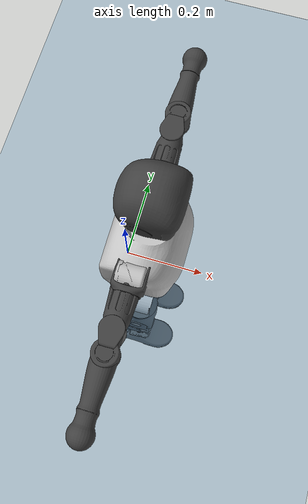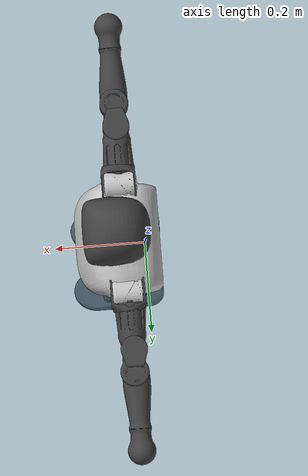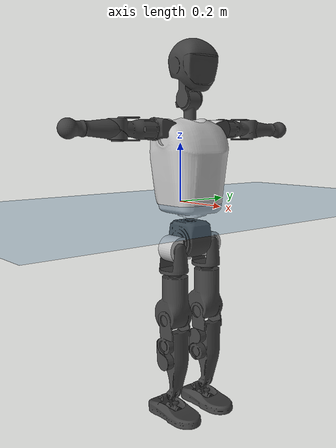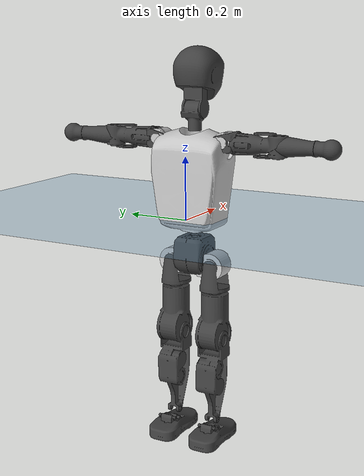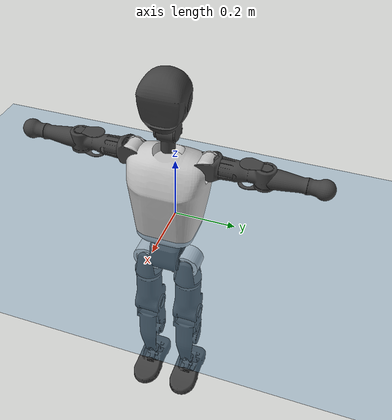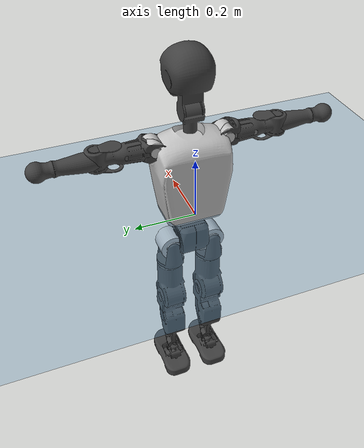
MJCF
<mujoco model="T1">
  <compiler angle="radian" assetdir="assets" balanceinertia="true" inertiafromgeom="false"/>

  <option timestep="0.005" density="1.2" viscosity="2e-05"/>

  <size nkey="1"/>

  <visual>
    <quality shadowsize="8192"/>
    <map shadowclip="0.5"/>
  </visual>

  <default>
    <default class="/">
      <joint armature="0.01" damping="0.01" frictionloss="0.1"/>
      <geom contype="0" conaffinity="0" group="1" solref="-1000 -80"/>
      <site size="0.01 0.005 0.005" group="5"/>
      <general forcelimited="true" biastype="affine" gainprm="25" biasprm="0 -25 -0.6"/>
      <default class="t1">
        <geom rgba="0.25 0.25 0.25 1"/>
        <default class="visual">
          <geom type="mesh" group="2"/>
        </default>
        <default class="collision">
          <geom group="3"/>
        </default>
        <default class="foot">
          <geom size="0.1115 0.05 0.015" type="box" condim="6" group="4" priority="1" solimp="0.015 1 0.015"/>
        </default>
        <default class="reward_collision_sphere">
          <geom group="5" rgba="1 0 0 1"/>
        </default>
      </default>
    </default>
  </default>

  <asset>
    <texture type="skybox" colorspace="auto" name="//unnamed_texture_0" builtin="gradient" rgb1="0.95 0.95 0.95" rgb2="0.95 0.95 0.95" width="100" height="600"/>
    <texture type="2d" colorspace="auto" name="texplane" builtin="checker" rgb1="0.345 0.575 0.748" rgb2="0.345 0.575 0.748" markrgb="1 1 1" width="512" height="512"/>
    <material name="MatPlane" class="/" texture="texplane" texuniform="true" texrepeat="2 2" specular="0.9"/>
    <mesh name="Trunk" class="/" file="Trunk.stl"/>
    <mesh name="H1" class="/" file="H1.stl"/>
    <mesh name="H2" class="/" file="H2.stl"/>
    <mesh name="AL1" class="/" file="AL1.stl"/>
    <mesh name="AL2" class="/" file="AL2.stl"/>
    <mesh name="AL3" class="/" file="AL3.stl"/>
    <mesh name="left_hand_link" class="/" file="left_hand_link.stl"/>
    <mesh name="AR1" class="/" file="AR1.stl"/>
    <mesh name="AR2" class="/" file="AR2.stl"/>
    <mesh name="AR3" class="/" file="AR3.stl"/>
    <mesh name="right_hand_link" class="/" file="right_hand_link.stl"/>
    <mesh name="Waist" class="/" file="Waist.stl"/>
    <mesh name="Hip_Pitch_Left" class="/" file="Hip_Pitch_Left.stl"/>
    <mesh name="Hip_Roll_Left" class="/" file="Hip_Roll_Left.stl"/>
    <mesh name="Hip_Yaw_Left" class="/" file="Hip_Yaw_Left.stl"/>
    <mesh name="Shank_Left" class="/" file="Shank_Left.stl"/>
    <mesh name="Ankle_Cross_Left" class="/" file="Ankle_Cross_Left.stl"/>
    <mesh name="left_foot_link" class="/" file="left_foot_link.stl"/>
    <mesh name="Hip_Pitch_Right" class="/" file="Hip_Pitch_Right.stl"/>
    <mesh name="Hip_Roll_Right" class="/" file="Hip_Roll_Right.stl"/>
    <mesh name="Hip_Yaw_Right" class="/" file="Hip_Yaw_Right.stl"/>
    <mesh name="Shank_Right" class="/" file="Shank_Right.stl"/>
    <mesh name="Ankle_Cross_Right" class="/" file="Ankle_Cross_Right.stl"/>
    <mesh name="right_foot_link" class="/" file="right_foot_link.stl"/>
  </asset>

  <worldbody>
    <geom name="floor" class="/" size="100 100 0.125" type="plane" group="0" material="MatPlane"/>
    <light name="toplight_shadow" class="/" pos="0 0 5" dir="0.0990148 0.0990148 -0.990148" type="directional" ambient="0.04 0.04 0.04" diffuse="0.55 0.55 0.55" specular="0.12 0.12 0.12"/>
    <light name="toplight_fill" class="/" pos="0 0 5" dir="0.0990148 0.0990148 -0.990148" type="directional" castshadow="false" ambient="0.04 0.04 0.04" diffuse="0.3 0.3 0.3" specular="0.08 0.08 0.08"/>
    <body name="trunk" childclass="t1" pos="-8.45758e-06 -0.000415242 0.00280777" quat="1 4.34385e-05 -7.16146e-05 4.37891e-05">
      <inertial pos="0.0488764 -0.00376203 0.1175" quat="0.999844 0.00997189 -0.0117333 0.00867746" mass="7.86772" diaginertia="0.0465839 0.0091364 0.0993616"/>
      <joint name="//unnamed_joint_0" type="free" armature="0" damping="0" frictionloss="0"/>
      <geom name="//unnamed_geom_1" class="visual" rgba="0.76 0.76 0.76 1" mesh="Trunk"/>
      <geom name="//unnamed_geom_2" class="collision" size="0.0664869 0.0886492 0.132974" pos="0.0523372 0 0.135265" type="box"/>
      <geom name="//unnamed_geom_3" class="reward_collision_sphere" size="0.101947" pos="0.0523372 0 0.112721"/>
      <geom name="//unnamed_geom_4" class="reward_collision_sphere" size="0.0132974" pos="0.0523372 0.0560982 0"/>
      <geom name="//unnamed_geom_5" class="reward_collision_sphere" size="0.0132974" pos="0.0523372 -0.0560982 0"/>
      <geom name="//unnamed_geom_6" class="reward_collision_sphere" size="0.0132974" pos="0.0523372 0.0706177 0.202898"/>
      <geom name="//unnamed_geom_7" class="reward_collision_sphere" size="0.0132974" pos="0.0523372 -0.0706177 0.202898"/>
      <site name="imu" pos="-0.000277023 0.0124664 -0.00884889" size="0.00886492"/>
      <camera name="track" pos="0 -1.31996 0" quat="0.707107 0.707107 0 0" mode="trackcom"/>
      <camera name="ego_camera" pos="0.106419 0 0.473428" quat="-0.5 -0.5 0.5 0.5"/>
      <body name="H1" pos="0.0535703 -0.00318665 0.272664" quat="0.999999 -0.000267818 0.000912701 0.00084427">
        <inertial pos="-0.00136133 -0.000500677 0.0664783" quat="0.764112 -0.0179014 0.00428723 0.644821" mass="0.298189" diaginertia="0.000117334 2.85521e-05 0.000268324"/>
        <joint name="AAHead_yaw" pos="0 0 0" axis="0.00691736 -0.00122015 0.999975" range="-1.53377 1.60547" armature="0.00915652" damping="0" frictionloss="0.0763205"/>
        <geom name="//unnamed_geom_8" class="visual" mesh="H1"/>
        <body name="H2" pos="-0.000478795 -0.00101973 0.068615" quat="1 0.000634331 -1.93351e-05 8.203e-05">
          <inertial pos="0.00406382 0.0030176 0.113929" quat="0.989655 0.0964806 -0.0660843 -0.0831139" mass="0.439542" diaginertia="0.00102537 0.000236744 0.00314542"/>
          <joint name="Head_pitch" pos="0 0 0" axis="0.0123384 -0.999906 0.00601362" range="-1.223 0.355418" armature="0.00863011" damping="0.00597543" frictionloss="0.087856"/>
          <geom name="//unnamed_geom_9" class="visual" mesh="H2"/>
          <geom name="//unnamed_geom_10" class="collision" size="0.0709193" pos="0.00872287 0 0.123993"/>
          <geom name="//unnamed_geom_11" class="reward_collision_sphere" size="0.0797842" pos="0.0174457 0 0.112721"/>
        </body>
      </body>
      <body name="AL1" pos="0.0494902 0.0697933 0.244454" quat="1 -8.8501e-05 0.000759572 0.000293468">
        <inertial pos="0.0002207 0.0269164 -0.000208783" quat="0.506418 0.503462 -0.502163 0.487749" mass="0.351772" diaginertia="0.000647445 0.000156791 0.000518478"/>
        <joint name="Left_Shoulder_Pitch" pos="0 0 0" axis="0.0141412 0.999897 -0.00249044" range="-3.267 1.22695" armature="0.00746948" damping="0" frictionloss="0.0791956"/>
        <geom name="//unnamed_geom_12" class="visual" rgba="0.76 0.76 0.76 1" mesh="AL1"/>
        <body name="AL2" pos="-0.000439894 0.0304829 -0.000150706" quat="0.999999 -8.77488e-05 1.46814e-05 -0.00109147">
          <inertial pos="0.0049642 0.0275378 -0.00032239" quat="0.479201 0.50835 -0.493449 0.518126" mass="0.108644" diaginertia="0.000196196 4.25017e-05 0.000309625"/>
          <joint name="Left_Shoulder_Roll" pos="0 0 0" axis="-0.999982 0.00594309 0.000821675" range="-1.5678 1.74225" armature="0.0100971" damping="0.021289" frictionloss="0.0930068"/>
          <geom name="//unnamed_geom_13" class="visual" mesh="AL2"/>
          <body name="AL3" pos="-0.00202181 0.0380623 -3.40492e-06" quat="0.999999 0.000783597 0.000870867 -0.00026514">
            <inertial pos="0.00190106 0.0558889 0.00182347" quat="0.70748 0.7067 0.00482584 0.00483361" mass="0.724159" diaginertia="0.00655914 0.00165611 0.00113811"/>
            <joint name="Left_Elbow_Pitch" pos="0 0 0" axis="-0.00147126 -0.999993 0.00353799" stiffness="0.00858479" range="-2.25475 2.30295" armature="0.0100191" damping="0.010203" frictionloss="0.0961228"/>
            <geom name="//unnamed_geom_14" class="visual" mesh="AL3"/>
            <geom name="//unnamed_geom_15" class="collision" size="0.0265947 0.0664869" pos="0 0.0329989 0" quat="0.707105 0.707108 0 0" type="cylinder"/>
            <geom name="//unnamed_geom_16" class="reward_collision_sphere" size="0.0319137"/>
            <body name="left_hand_link" pos="-0.00214006 0.0988227 -0.00178185" quat="1 -0.000431952 -0.000140194 0.000762583">
              <inertial pos="0.000832058 0.0751729 -0.000400696" quat="0.707406 0.706807 -0.000444661 -0.000292258" mass="0.222132" diaginertia="0.00424161 0.00105835 0.00038047"/>
              <joint name="Left_Elbow_Yaw" pos="0 0 0" axis="0.0113487 -0.00807486 0.999903" stiffness="0.00570834" range="-2.48778 0.034648" armature="0.00776019" damping="0.000752963" frictionloss="0.0994405"/>
              <geom name="//unnamed_geom_17" class="visual" mesh="left_hand_link"/>
              <geom name="//unnamed_geom_18" class="collision" size="0.0265947 0.077568" pos="0 0.0857972 0" quat="0.707105 0.707108 0 0" type="cylinder"/>
              <geom name="//unnamed_geom_19" class="reward_collision_sphere" size="0.0443246"/>
              <geom name="//unnamed_geom_20" class="reward_collision_sphere" size="0.0310272" pos="0 0.0725976 0"/>
              <geom name="//unnamed_geom_21" class="reward_collision_sphere" size="0.0310272" pos="0 0.141895 0"/>
            </body>
          </body>
        </body>
      </body>
      <body name="AR1" pos="0.0495151 -0.0666553 0.244166" quat="1 5.33628e-05 0.000467708 -9.1894e-05">
        <inertial pos="-0.000365216 -0.0323852 -0.00058588" quat="0.504398 0.497984 -0.50178 0.495794" mass="0.38068" diaginertia="0.000691918 0.000156982 0.000534655"/>
        <joint name="Right_Shoulder_Pitch" pos="0 0 0" axis="-0.00780639 -0.999967 0.00215536" range="-1.22826 3.35287" armature="0.00900266" damping="0.0172548" frictionloss="0.0799047"/>
        <geom name="//unnamed_geom_22" class="visual" rgba="0.76 0.76 0.76 1" mesh="AR1"/>
        <body name="AR2" pos="0.00127096 -0.0328311 8.28056e-05" quat="1 7.39868e-05 0.000124321 -0.000123672">
          <inertial pos="0.00620861 -0.0246406 -0.000716735" quat="0.512497 0.483458 -0.515289 0.487947" mass="0.117469" diaginertia="0.000206556 4.30571e-05 0.00033364"/>
          <joint name="Right_Shoulder_Roll" pos="0 0 0" axis="-0.999961 0.00640496 0.00602557" range="-1.72934 1.62792" armature="0.00913149" damping="0" frictionloss="0.100637"/>
          <geom name="//unnamed_geom_23" class="visual" mesh="AR2"/>
          <body name="AR3" pos="-0.00271275 -0.0403542 -0.00328171" quat="0.999999 -0.000615264 -0.000336378 -0.000891259">
            <inertial pos="-0.000903681 -0.0536363 -0.000958206" quat="0.701665 0.712486 -0.00527914 0.00116767" mass="0.744559" diaginertia="0.00657195 0.00162003 0.00113687"/>
            <joint name="Right_Elbow_Pitch" pos="0 0 0" axis="-0.00189424 0.999995 0.00234989" range="-2.32723 2.21715" armature="0.00915516" damping="0.00804557" frictionloss="0.0870297"/>
            <geom name="//unnamed_geom_24" class="visual" mesh="AR3"/>
            <geom name="//unnamed_geom_25" class="collision" size="0.0265947 0.0664869" pos="0 -0.0329989 0" quat="0.707105 0.707108 0 0" type="cylinder"/>
            <geom name="//unnamed_geom_26" class="reward_collision_sphere" size="0.0319137"/>
            <body name="right_hand_link" pos="-0.000511096 -0.0970634 0.000749274" quat="1 2.97291e-05 -0.000114472 7.21767e-05">
              <inertial pos="-5.42612e-05 -0.0722689 -0.000857035" quat="0.699883 0.714177 0.00272134 0.0103828" mass="0.215459" diaginertia="0.00393047 0.000992262 0.00037801"/>
              <joint name="Right_Elbow_Yaw" pos="0 0 0" axis="-0.00283557 0.0160849 0.999867" range="0.030201 2.48843" armature="0.0091087" damping="0.00739136" frictionloss="0.0932882"/>
              <geom name="//unnamed_geom_27" class="visual" mesh="right_hand_link"/>
              <geom name="//unnamed_geom_28" class="collision" size="0.0265947 0.077568" pos="0 -0.0857972 0" quat="0.707105 0.707108 0 0" type="cylinder"/>
              <geom name="//unnamed_geom_29" class="reward_collision_sphere" size="0.0443246"/>
              <geom name="//unnamed_geom_30" class="reward_collision_sphere" size="0.0310272" pos="0 -0.0725976 0"/>
              <geom name="//unnamed_geom_31" class="reward_collision_sphere" size="0.0310272" pos="0 -0.141895 0"/>
            </body>
          </body>
        </body>
      </body>
      <body name="Waist" pos="0.0537791 -0.00199564 -0.129971" quat="0.999999 -0.000272155 0.00127379 0.0011105">
        <inertial pos="0.000639658 -0.00371158 0.00761017" quat="0.983518 0.000527704 -0.180788 0.00281237" mass="1.83252" diaginertia="0.00270131 0.000652557 0.00833918"/>
        <joint name="Waist" pos="0 0 0" axis="-0.00383994 0.0147985 0.999883" stiffness="0.00811051" range="-1.56886 1.57009" armature="0.00927363" damping="0" frictionloss="0.0795753"/>
        <geom name="//unnamed_geom_32" class="visual" mesh="Waist"/>
        <body name="Hip_Pitch_Left" pos="0.00366335 0.0683941 0.00240812" quat="0.999999 -0.000488544 -0.00144395 0.000199706">
          <inertial pos="3.04337e-05 -0.0060004 -0.0205807" quat="0.974522 0.222785 0.0248837 0.00743203" mass="0.708987" diaginertia="0.000887408 0.000181321 0.00215438"/>
          <joint name="Left_Hip_Pitch" pos="0 0 0" axis="-0.00698704 0.999974 -0.00202142" range="-1.78362 1.59065" armature="0.00851934" damping="0.00589898" frictionloss="0.0960138"/>
          <geom name="//unnamed_geom_33" class="visual" rgba="0.76 0.76 0.76 1" mesh="Hip_Pitch_Left"/>
          <body name="Hip_Roll_Left" pos="0.00216153 0.00248367 -0.0201143" quat="1 -0.000168263 0.000527782 0.000224424">
            <inertial pos="-0.00120511 -0.00304537 -0.0601671" quat="0.708257 -0.00589135 0.00146529 0.705929" mass="0.264056" diaginertia="0.000847331 0.000187312 0.000919905"/>
            <joint name="Left_Hip_Roll" pos="0 0 0" axis="-0.999982 0.00116372 -0.00590628" stiffness="0.00183073" range="-1.6245 0.246167" armature="0.00983006" damping="0.00967031" frictionloss="0.0932166"/>
            <geom name="//unnamed_geom_34" class="visual" mesh="Hip_Roll_Left"/>
            <geom name="//unnamed_geom_35" class="reward_collision_sphere" size="0.048757"/>
            <body name="Hip_Yaw_Left" pos="0.00084018 0.00228058 -0.0902839" quat="0.999999 0.000209202 0.000455919 0.00107491">
              <inertial pos="-0.00640317 -0.000207802 -0.103142" quat="0.697931 -0.035787 -0.0335888 0.714481" mass="1.5214" diaginertia="0.0125031 0.00315181 0.00486949"/>
              <joint name="Left_Hip_Yaw" pos="0 0 0" axis="0.00491415 0.00812699 -0.999955" stiffness="0.00168472" range="-1.00394 0.966209" armature="0.00847014" damping="0.00827333" frictionloss="0.0986273"/>
              <geom name="//unnamed_geom_36" class="visual" mesh="Hip_Yaw_Left"/>
              <geom name="//unnamed_geom_37" class="collision" size="0.0443246 0.0709193" type="cylinder"/>
              <body name="Shank_Left" pos="-0.00865278 0.00152067 -0.153478" quat="1 0.000109146 -0.000219101 0.000146428">
                <inertial pos="-0.00257633 -0.00247992 -0.141056" quat="0.99749 0.00102232 -0.0241642 0.0665515" mass="1.17321" diaginertia="0.017323 0.00417773 0.00337522"/>
                <joint name="Left_Knee_Pitch" pos="0 0 0" axis="-0.0024146 0.999971 -0.00729131" stiffness="0.00758829" range="0.0494332 2.3814" armature="0.0088528" damping="0.0110313" frictionloss="0.0841468"/>
                <geom name="//unnamed_geom_38" class="visual" mesh="Shank_Left"/>
                <geom name="//unnamed_geom_39" class="collision" size="0.0443246 0.0664869" pos="0 0 -0.135265" type="cylinder"/>
                <geom name="//unnamed_geom_40" class="reward_collision_sphere" size="0.0576219"/>
                <body name="Ankle_Cross_Left" pos="-0.000435038 0.000875896 -0.314212" quat="0.999999 3.4803e-05 -0.000966556 -0.00104129">
                  <inertial pos="-0.00030283 0.000738991 -0.0115157" quat="0.442944 0.550922 0.551138 0.44332" mass="0.0515103" diaginertia="1.48099e-05 3.08569e-06 2.03408e-05"/>
                  <joint name="Left_Ankle_Pitch" pos="0 0 0" axis="0.0147529 0.999888 -0.00269326" stiffness="0.0085233" range="-0.891544 0.372777" armature="0.00863946" damping="0.0209861" frictionloss="0.0760567"/>
                  <geom name="//unnamed_geom_41" class="visual" mesh="Ankle_Cross_Left"/>
                  <body name="left_foot_link" pos="-0.00123268 0.00447806 -0.0152275" quat="1 -0.000137436 -8.1342e-05 0.000145512">
                    <inertial pos="0.00107743 0.00274739 -0.0103136" quat="0.00117795 0.630256 0.00656387 0.776359" mass="0.468093" diaginertia="0.001395 0.000310843 0.00412673"/>
                    <joint name="Left_Ankle_Roll" pos="0 0 0" axis="-0.999874 -0.0158896 -0.000283124" stiffness="0.000967071" range="-0.467509 0.481462" armature="0.00946051" damping="0.00958953" frictionloss="0.0945632"/>
                    <geom name="//unnamed_geom_42" class="visual" mesh="left_foot_link"/>
                    <geom name="left_foot" class="foot" size="0.104343 0.0522603 0.0131861" pos="0.00872287 0 -0.0169081"/>
                    <geom name="//unnamed_geom_44" class="reward_collision_sphere" size="0.0460976" pos="0.00872287 0 -0.0169081"/>
                    <geom name="//unnamed_geom_45" class="reward_collision_sphere" size="0.0265947" pos="0.0828673 -0.0151795 -0.0169081"/>
                    <geom name="//unnamed_geom_46" class="reward_collision_sphere" size="0.0265947" pos="-0.0610601 -0.0151795 -0.0169081"/>
                    <site name="left_foot" class="foot" pos="0.00872287 0 -0.0169081" size="0.00886492"/>
                  </body>
                </body>
              </body>
            </body>
          </body>
        </body>
        <body name="Hip_Pitch_Right" pos="0.00261639 -0.0698044 -0.00240569" quat="1 -9.50447e-05 -0.000174069 -2.26642e-05">
          <inertial pos="-0.00199988 0.00453185 -0.0200514" quat="0.971465 -0.236117 0.022301 0.00253658" mass="0.675484" diaginertia="0.000881409 0.000177569 0.00221397"/>
          <joint name="Right_Hip_Pitch" pos="0 0 0" axis="0.000268726 -0.99997 0.00778887" range="-1.57133 1.74364" armature="0.00928013" damping="0.00322947" frictionloss="0.0783832"/>
          <geom name="//unnamed_geom_47" class="visual" rgba="0.76 0.76 0.76 1" mesh="Hip_Pitch_Right"/>
          <body name="Hip_Roll_Right" pos="-0.000497932 -0.00246502 -0.0228708" quat="1 7.82618e-05 -0.00027063 -0.000236027">
            <inertial pos="0.0010916 -0.00237306 -0.0633225" quat="0.703981 -0.00780611 -0.0168781 0.709976" mass="0.262645" diaginertia="0.000857498 0.000186222 0.000925402"/>
            <joint name="Right_Hip_Roll" pos="0 0 0" axis="-0.999995 0.00209451 -0.00236865" range="-0.178928 1.57237" armature="0.00870408" damping="0.0111156" frictionloss="0.0762636"/>
            <geom name="//unnamed_geom_48" class="visual" mesh="Hip_Roll_Right"/>
            <geom name="//unnamed_geom_49" class="reward_collision_sphere" size="0.048757"/>
            <body name="Hip_Yaw_Right" pos="0.00327791 0.00127977 -0.0905081" quat="0.999999 -0.000839112 -0.000715678 0.000991209">
              <inertial pos="-0.00635042 -0.0016749 -0.0985279" quat="0.709391 -0.0314905 -0.0348879 0.703246" mass="1.53848" diaginertia="0.0127362 0.00310783 0.00461939"/>
              <joint name="Right_Hip_Yaw" pos="0 0 0" axis="0.00759639 -0.0153272 -0.999854" stiffness="0.00120415" range="-1.05718 1.05877" armature="0.00893112" damping="0.0163816" frictionloss="0.0885132"/>
              <geom name="//unnamed_geom_50" class="visual" mesh="Hip_Yaw_Right"/>
              <geom name="//unnamed_geom_51" class="collision" size="0.0443246 0.0709193" type="cylinder"/>
              <body name="Shank_Right" pos="-0.0127397 0.00182912 -0.151763" quat="1 -0.000285099 0.000198847 -0.00034455">
                <inertial pos="-0.00599885 -0.000441265 -0.140552" quat="0.999289 -0.00126469 -0.0232655 -0.0296343" mass="1.20609" diaginertia="0.016939 0.00414864 0.00345953"/>
                <joint name="Right_Knee_Pitch" pos="0 0 0" axis="8.2266e-05 -1 -0.000260584" range="-2.29311 0.0328862" armature="0.0088883" damping="0.012164" frictionloss="0.0876293"/>
                <geom name="//unnamed_geom_52" class="visual" mesh="Shank_Right"/>
                <geom name="//unnamed_geom_53" class="collision" size="0.0443246 0.0664869" pos="0 0 -0.135265" type="cylinder"/>
                <geom name="//unnamed_geom_54" class="reward_collision_sphere" size="0.0576219"/>
                <body name="Ankle_Cross_Right" pos="-0.000593247 0.000667202 -0.314879" quat="0.999999 -0.00015012 0.00064898 -0.00117879">
                  <inertial pos="-0.00349631 0.000809102 -0.0110672" quat="0.434936 0.552598 0.555858 0.44327" mass="0.0492792" diaginertia="1.39515e-05 3.22256e-06 1.95431e-05"/>
                  <joint name="Right_Ankle_Pitch" pos="0 0 0" axis="0.00395568 -0.999921 -0.0118917" range="-0.291638 0.898584" armature="0.00878421" damping="0" frictionloss="0.0764861"/>
                  <geom name="//unnamed_geom_55" class="visual" mesh="Ankle_Cross_Right"/>
                  <body name="right_foot_link" pos="0.00175492 -0.00199464 -0.0122835" quat="1 0.000651424 -0.000361069 0.000340997">
                    <inertial pos="-0.00132332 -0.00311536 -0.010205" quat="-0.00686919 0.628397 0.00758315 0.777825" mass="0.481574" diaginertia="0.00136044 0.000296927 0.00382386"/>
                    <joint name="Right_Ankle_Roll" pos="0 0 0" axis="-1 -0.000396862 -4.81311e-05" stiffness="0.00796322" range="-0.434868 0.41917" armature="0.00988323" damping="0.0155836" frictionloss="0.0873031"/>
                    <geom name="//unnamed_geom_56" class="visual" mesh="right_foot_link"/>
                    <geom name="right_foot" class="foot" size="0.100822 0.0461977 0.0134021" pos="0.00872287 0 -0.0169081"/>
                    <geom name="//unnamed_geom_58" class="reward_collision_sphere" size="0.0354597"/>
                    <geom name="//unnamed_geom_59" class="reward_collision_sphere" size="0.0265947" pos="0.00872287 0 -0.0169081"/>
                    <geom name="//unnamed_geom_60" class="reward_collision_sphere" size="0.0265947" pos="0.0828673 0.0151795 -0.0169081"/>
                    <geom name="//unnamed_geom_61" class="reward_collision_sphere" size="0.0265947" pos="-0.0610601 0.0151795 -0.0169081"/>
                    <site name="right_foot" class="foot" pos="0.00872287 0 -0.0169081" size="0.00886492"/>
                  </body>
                </body>
              </body>
            </body>
          </body>
        </body>
      </body>
    </body>
  </worldbody>

  <contact>
    <pair class="/" geom1="floor" geom2="left_foot" name="//unnamed_contact_0"/>
    <pair class="/" geom1="floor" geom2="right_foot" name="//unnamed_contact_1"/>
  </contact>

  <actuator>
    <general name="AAHead_yaw" class="/" joint="AAHead_yaw" forcerange="-6.8695 6.8695" gainprm="22.0568" biasprm="0 -22.0568 -0.482375"/>
    <general name="Head_pitch" class="/" joint="Head_pitch" forcerange="-6.86255 6.86255" gainprm="22.0568" biasprm="0 -22.0568 -0.482375"/>
    <general name="Left_Shoulder_Pitch" class="/" joint="Left_Shoulder_Pitch" forcerange="-14.812 14.812" gainprm="22.0568" biasprm="0 -22.0568 -0.482375"/>
    <general name="Left_Shoulder_Roll" class="/" joint="Left_Shoulder_Roll" forcerange="-15.3179 15.3179" gainprm="22.0568" biasprm="0 -22.0568 -0.482375"/>
    <general name="Left_Elbow_Pitch" class="/" joint="Left_Elbow_Pitch" forcerange="-17.3067 17.3067" gainprm="22.0568" biasprm="0 -22.0568 -0.482375"/>
    <general name="Left_Elbow_Yaw" class="/" joint="Left_Elbow_Yaw" forcerange="-14.3385 14.3385" gainprm="22.0568" biasprm="0 -22.0568 -0.482375"/>
    <general name="Right_Shoulder_Pitch" class="/" joint="Right_Shoulder_Pitch" forcerange="-14.9234 14.9234" gainprm="22.0568" biasprm="0 -22.0568 -0.482375"/>
    <general name="Right_Shoulder_Roll" class="/" joint="Right_Shoulder_Roll" forcerange="-16.065 16.065" gainprm="22.0568" biasprm="0 -22.0568 -0.482375"/>
    <general name="Right_Elbow_Pitch" class="/" joint="Right_Elbow_Pitch" forcerange="-17.2297 17.2297" gainprm="22.0568" biasprm="0 -22.0568 -0.482375"/>
    <general name="Right_Elbow_Yaw" class="/" joint="Right_Elbow_Yaw" forcerange="-17.0082 17.0082" gainprm="22.0568" biasprm="0 -22.0568 -0.482375"/>
    <general name="Waist" class="/" joint="Waist" forcerange="-26.9421 26.9421" gainprm="22.0568" biasprm="0 -22.0568 -0.482375"/>
    <general name="Left_Hip_Pitch" class="/" joint="Left_Hip_Pitch" forcerange="-37.9319 37.9319" gainprm="22.0568" biasprm="0 -22.0568 -0.482375"/>
    <general name="Left_Hip_Roll" class="/" joint="Left_Hip_Roll" forcerange="-28.9971 28.9971" gainprm="22.0568" biasprm="0 -22.0568 -0.482375"/>
    <general name="Left_Hip_Yaw" class="/" joint="Left_Hip_Yaw" forcerange="-25.1448 25.1448" gainprm="22.0568" biasprm="0 -22.0568 -0.482375"/>
    <general name="Left_Knee_Pitch" class="/" joint="Left_Knee_Pitch" forcerange="-58.4945 58.4945" gainprm="22.0568" biasprm="0 -22.0568 -0.482375"/>
    <general name="Left_Ankle_Pitch" class="/" joint="Left_Ankle_Pitch" forcerange="-17.1165 17.1165" gainprm="22.0568" biasprm="0 -22.0568 -0.482375"/>
    <general name="Left_Ankle_Roll" class="/" joint="Left_Ankle_Roll" forcerange="-13.7705 13.7705" gainprm="22.0568" biasprm="0 -22.0568 -0.482375"/>
    <general name="Right_Hip_Pitch" class="/" joint="Right_Hip_Pitch" forcerange="-39.1599 39.1599" gainprm="22.0568" biasprm="0 -22.0568 -0.482375"/>
    <general name="Right_Hip_Roll" class="/" joint="Right_Hip_Roll" forcerange="-23.9838 23.9838" gainprm="22.0568" biasprm="0 -22.0568 -0.482375"/>
    <general name="Right_Hip_Yaw" class="/" joint="Right_Hip_Yaw" forcerange="-24.0881 24.0881" gainprm="22.0568" biasprm="0 -22.0568 -0.482375"/>
    <general name="Right_Knee_Pitch" class="/" joint="Right_Knee_Pitch" forcerange="-58.3306 58.3306" gainprm="22.0568" biasprm="0 -22.0568 -0.482375"/>
    <general name="Right_Ankle_Pitch" class="/" joint="Right_Ankle_Pitch" forcerange="-19.5542 19.5542" gainprm="22.0568" biasprm="0 -22.0568 -0.482375"/>
    <general name="Right_Ankle_Roll" class="/" joint="Right_Ankle_Roll" forcerange="-12.2675 12.2675" gainprm="22.0568" biasprm="0 -22.0568 -0.482375"/>
  </actuator>

  <sensor>
    <gyro site="imu" name="imu_angular_velocity"/>
    <velocimeter site="imu" name="imu_linear_velocity"/>
    <framelinvel objtype="site" objname="left_foot" name="left_foot_global_linear_velocity"/>
    <framelinvel objtype="site" objname="right_foot" name="right_foot_global_linear_velocity"/>
  </sensor>

  <keyframe>
    <key name="home" qpos="0 0 0.6385 1 0 0 0 0 0 0 1.4 0 -0.4 0 -1.4 0 0.4 0 -0.4 0 0 0.8 -0.4 0 0.4 0 0 -0.8 0.4 0"/>
  </keyframe>
</mujoco>
